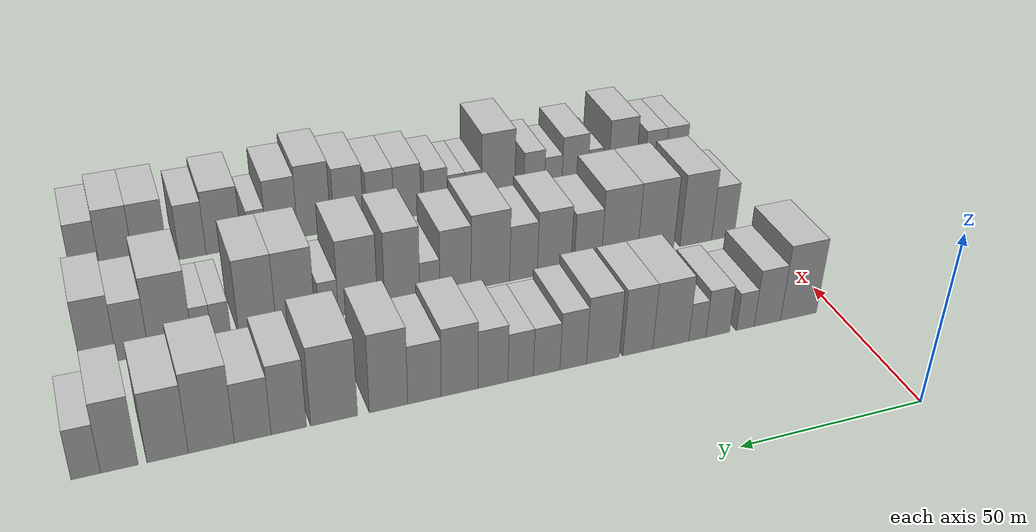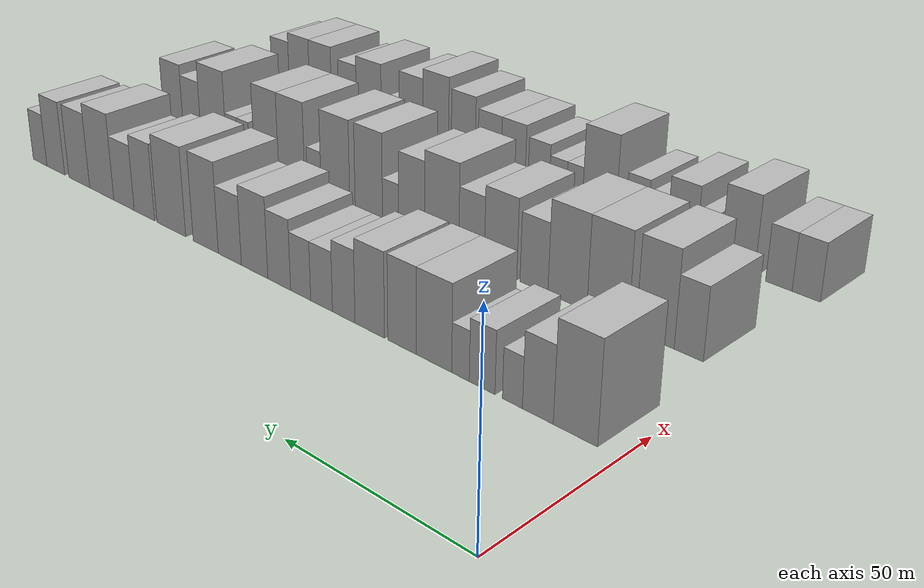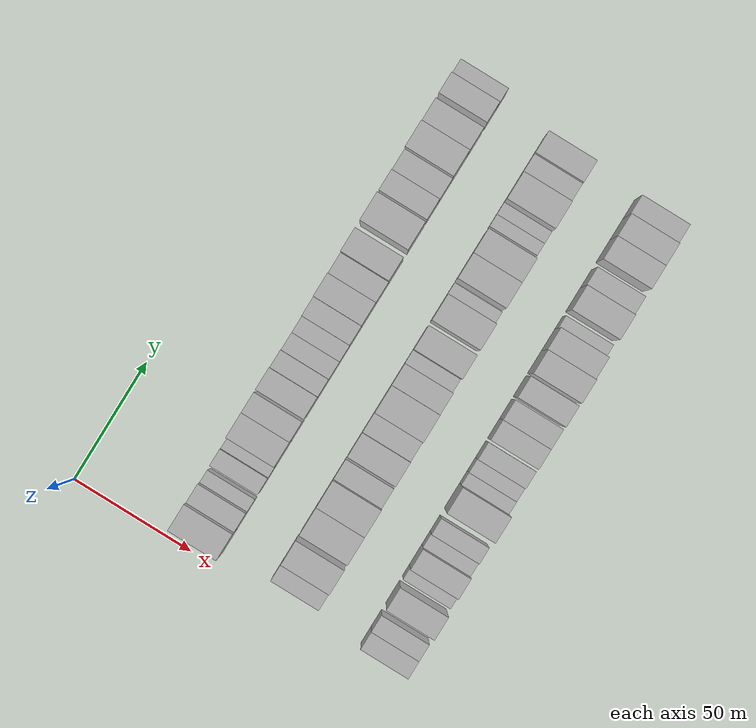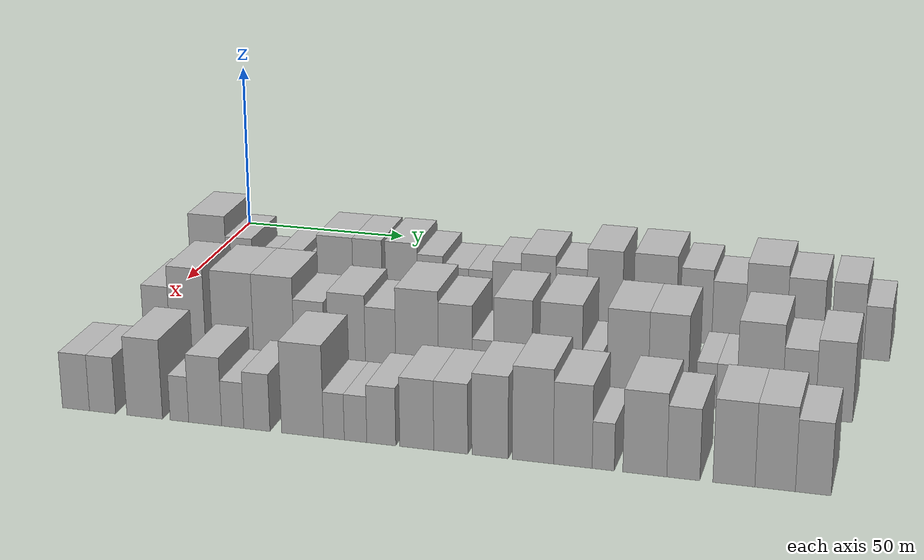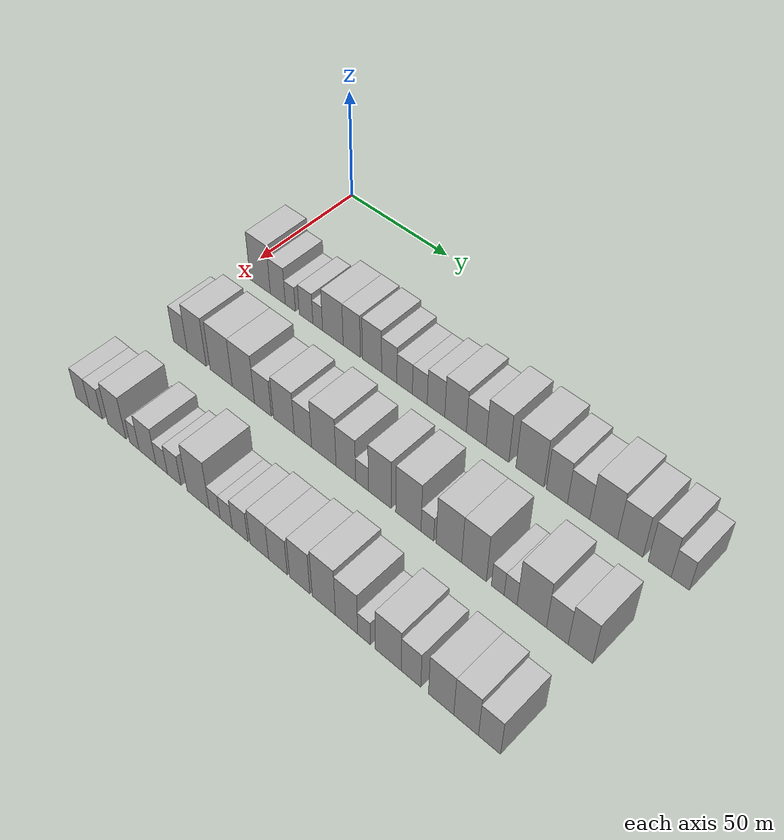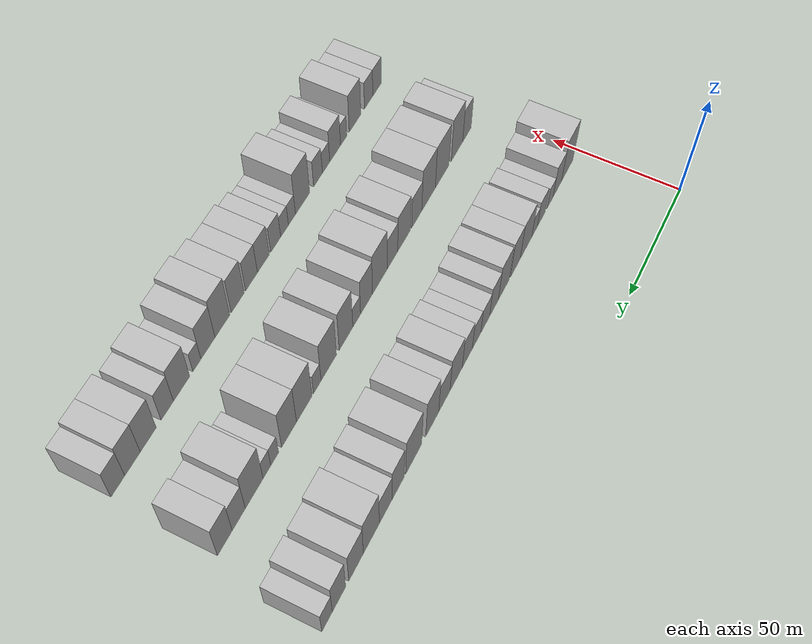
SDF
<sdf version="1.6">
 <world name="default">
  <model name="building_43">
   <static>1</static>
   <pose>50.0000 10.8347 0 0.000000 0.000000 0.000000</pose>
   <link name="link">
    <pose>0 0 12.00 0 0 0</pose>
    <collision name="collision"><geometry><box><size>20.0000 10.9284 24.0000</size></box></geometry></collision>
    <visual name="visual">
     <cast_shadows>0</cast_shadows>
     <geometry><box><size>20.0000 10.9284 24.0000</size></box></geometry>
     <material>
      <script>
       <uri>model://HANNAS_wall/materials/scripts</uri>
       <uri>model://HANNAS_wall/materials/textures</uri>
       <name>vrc/HANNAS_wall</name>
      </script>
     </material>
    </visual>
   </link>
  </model>
  <model name="building_44">
   <static>1</static>
   <pose>50.0000 20.2627 0 0.000000 0.000000 0.000000</pose>
   <link name="link">
    <pose>0 0 9.00 0 0 0</pose>
    <collision name="collision"><geometry><box><size>20.0000 7.9275 18.0000</size></box></geometry></collision>
    <visual name="visual">
     <cast_shadows>0</cast_shadows>
     <geometry><box><size>20.0000 7.9275 18.0000</size></box></geometry>
     <material>
      <script>
       <uri>model://HANNAS_wall/materials/scripts</uri>
       <uri>model://HANNAS_wall/materials/textures</uri>
       <name>vrc/HANNAS_wall</name>
      </script>
     </material>
    </visual>
   </link>
  </model>
  <model name="building_45">
   <static>1</static>
   <pose>50.0000 26.8715 0 0.000000 0.000000 0.000000</pose>
   <link name="link">
    <pose>0 0 6.00 0 0 0</pose>
    <collision name="collision"><geometry><box><size>20.0000 5.2903 12.0000</size></box></geometry></collision>
    <visual name="visual">
     <cast_shadows>0</cast_shadows>
     <geometry><box><size>20.0000 5.2903 12.0000</size></box></geometry>
     <material>
      <script>
       <uri>model://HANNAS_wall/materials/scripts</uri>
       <uri>model://HANNAS_wall/materials/textures</uri>
       <name>vrc/HANNAS_wall</name>
      </script>
     </material>
    </visual>
   </link>
  </model>
  <model name="building_46">
   <static>1</static>
   <pose>50.0000 35.0334 0 0.000000 0.000000 0.000000</pose>
   <link name="link">
    <pose>0 0 7.50 0 0 0</pose>
    <collision name="collision"><geometry><box><size>20.0000 7.0335 15.0000</size></box></geometry></collision>
    <visual name="visual">
     <cast_shadows>0</cast_shadows>
     <geometry><box><size>20.0000 7.0335 15.0000</size></box></geometry>
     <material>
      <script>
       <uri>model://HANNAS_wall/materials/scripts</uri>
       <uri>model://HANNAS_wall/materials/textures</uri>
       <name>vrc/HANNAS_wall</name>
      </script>
     </material>
    </visual>
   </link>
  </model>
  <model name="building_47">
   <static>1</static>
   <pose>50.0000 41.0266 0 0.000000 0.000000 0.000000</pose>
   <link name="link">
    <pose>0 0 6.00 0 0 0</pose>
    <collision name="collision"><geometry><box><size>20.0000 4.9528 12.0000</size></box></geometry></collision>
    <visual name="visual">
     <cast_shadows>0</cast_shadows>
     <geometry><box><size>20.0000 4.9528 12.0000</size></box></geometry>
     <material>
      <script>
       <uri>model://HANNAS_wall/materials/scripts</uri>
       <uri>model://HANNAS_wall/materials/textures</uri>
       <name>vrc/HANNAS_wall</name>
      </script>
     </material>
    </visual>
   </link>
  </model>
  <model name="building_48">
   <static>1</static>
   <pose>50.0000 48.6818 0 0.000000 0.000000 0.000000</pose>
   <link name="link">
    <pose>0 0 10.50 0 0 0</pose>
    <collision name="collision"><geometry><box><size>20.0000 10.3576 21.0000</size></box></geometry></collision>
    <visual name="visual">
     <cast_shadows>0</cast_shadows>
     <geometry><box><size>20.0000 10.3576 21.0000</size></box></geometry>
     <material>
      <script>
       <uri>model://HANNAS_wall/materials/scripts</uri>
       <uri>model://HANNAS_wall/materials/textures</uri>
       <name>vrc/HANNAS_wall</name>
      </script>
     </material>
    </visual>
   </link>
  </model>
  <model name="building_49">
   <static>1</static>
   <pose>50.0000 58.1059 0 0.000000 0.000000 0.000000</pose>
   <link name="link">
    <pose>0 0 10.50 0 0 0</pose>
    <collision name="collision"><geometry><box><size>20.0000 8.4907 21.0000</size></box></geometry></collision>
    <visual name="visual">
     <cast_shadows>0</cast_shadows>
     <geometry><box><size>20.0000 8.4907 21.0000</size></box></geometry>
     <material>
      <script>
       <uri>model://HANNAS_wall/materials/scripts</uri>
       <uri>model://HANNAS_wall/materials/textures</uri>
       <name>vrc/HANNAS_wall</name>
      </script>
     </material>
    </visual>
   </link>
  </model>
  <model name="building_50">
   <static>1</static>
   <pose>50.0000 67.9712 0 0.000000 0.000000 0.000000</pose>
   <link name="link">
    <pose>0 0 10.50 0 0 0</pose>
    <collision name="collision"><geometry><box><size>20.0000 9.2398 21.0000</size></box></geometry></collision>
    <visual name="visual">
     <cast_shadows>0</cast_shadows>
     <geometry><box><size>20.0000 9.2398 21.0000</size></box></geometry>
     <material>
      <script>
       <uri>model://HANNAS_wall/materials/scripts</uri>
       <uri>model://HANNAS_wall/materials/textures</uri>
       <name>vrc/HANNAS_wall</name>
      </script>
     </material>
    </visual>
   </link>
  </model>
  <model name="building_51">
   <static>1</static>
   <pose>50.0000 76.2383 0 0.000000 0.000000 0.000000</pose>
   <link name="link">
    <pose>0 0 9.00 0 0 0</pose>
    <collision name="collision"><geometry><box><size>20.0000 7.2944 18.0000</size></box></geometry></collision>
    <visual name="visual">
     <cast_shadows>0</cast_shadows>
     <geometry><box><size>20.0000 7.2944 18.0000</size></box></geometry>
     <material>
      <script>
       <uri>model://HANNAS_wall/materials/scripts</uri>
       <uri>model://HANNAS_wall/materials/textures</uri>
       <name>vrc/HANNAS_wall</name>
      </script>
     </material>
    </visual>
   </link>
  </model>
  <model name="building_52">
   <static>1</static>
   <pose>50.0000 83.5238 0 0.000000 0.000000 0.000000</pose>
   <link name="link">
    <pose>0 0 7.50 0 0 0</pose>
    <collision name="collision"><geometry><box><size>20.0000 7.2766 15.0000</size></box></geometry></collision>
    <visual name="visual">
     <cast_shadows>0</cast_shadows>
     <geometry><box><size>20.0000 7.2766 15.0000</size></box></geometry>
     <material>
      <script>
       <uri>model://HANNAS_wall/materials/scripts</uri>
       <uri>model://HANNAS_wall/materials/textures</uri>
       <name>vrc/HANNAS_wall</name>
      </script>
     </material>
    </visual>
   </link>
  </model>
  <model name="building_53">
   <static>1</static>
   <pose>50.0000 90.5950 0 0.000000 0.000000 0.000000</pose>
   <link name="link">
    <pose>0 0 7.50 0 0 0</pose>
    <collision name="collision"><geometry><box><size>20.0000 6.8658 15.0000</size></box></geometry></collision>
    <visual name="visual">
     <cast_shadows>0</cast_shadows>
     <geometry><box><size>20.0000 6.8658 15.0000</size></box></geometry>
     <material>
      <script>
       <uri>model://HANNAS_wall/materials/scripts</uri>
       <uri>model://HANNAS_wall/materials/textures</uri>
       <name>vrc/HANNAS_wall</name>
      </script>
     </material>
    </visual>
   </link>
  </model>
  <model name="building_54">
   <static>1</static>
   <pose>50.0000 98.0356 0 0.000000 0.000000 0.000000</pose>
   <link name="link">
    <pose>0 0 9.00 0 0 0</pose>
    <collision name="collision"><geometry><box><size>20.0000 8.0153 18.0000</size></box></geometry></collision>
    <visual name="visual">
     <cast_shadows>0</cast_shadows>
     <geometry><box><size>20.0000 8.0153 18.0000</size></box></geometry>
     <material>
      <script>
       <uri>model://HANNAS_wall/materials/scripts</uri>
       <uri>model://HANNAS_wall/materials/textures</uri>
       <name>vrc/HANNAS_wall</name>
      </script>
     </material>
    </visual>
   </link>
  </model>
  <model name="building_55">
   <static>1</static>
   <pose>50.0000 106.8641 0 0.000000 0.000000 0.000000</pose>
   <link name="link">
    <pose>0 0 10.50 0 0 0</pose>
    <collision name="collision"><geometry><box><size>20.0000 9.6418 21.0000</size></box></geometry></collision>
    <visual name="visual">
     <cast_shadows>0</cast_shadows>
     <geometry><box><size>20.0000 9.6418 21.0000</size></box></geometry>
     <material>
      <script>
       <uri>model://HANNAS_wall/materials/scripts</uri>
       <uri>model://HANNAS_wall/materials/textures</uri>
       <name>vrc/HANNAS_wall</name>
      </script>
     </material>
    </visual>
   </link>
  </model>
  <model name="building_56">
   <static>1</static>
   <pose>50.0000 116.0233 0 0.000000 0.000000 0.000000</pose>
   <link name="link">
    <pose>0 0 9.00 0 0 0</pose>
    <collision name="collision"><geometry><box><size>20.0000 8.6765 18.0000</size></box></geometry></collision>
    <visual name="visual">
     <cast_shadows>0</cast_shadows>
     <geometry><box><size>20.0000 8.6765 18.0000</size></box></geometry>
     <material>
      <script>
       <uri>model://HANNAS_wall/materials/scripts</uri>
       <uri>model://HANNAS_wall/materials/textures</uri>
       <name>vrc/HANNAS_wall</name>
      </script>
     </material>
    </visual>
   </link>
  </model>
  <model name="building_57">
   <static>1</static>
   <pose>50.0000 125.2580 0 0.000000 0.000000 0.000000</pose>
   <link name="link">
    <pose>0 0 12.00 0 0 0</pose>
    <collision name="collision"><geometry><box><size>20.0000 9.7930 24.0000</size></box></geometry></collision>
    <visual name="visual">
     <cast_shadows>0</cast_shadows>
     <geometry><box><size>20.0000 9.7930 24.0000</size></box></geometry>
     <material>
      <script>
       <uri>model://HANNAS_wall/materials/scripts</uri>
       <uri>model://HANNAS_wall/materials/textures</uri>
       <name>vrc/HANNAS_wall</name>
      </script>
     </material>
    </visual>
   </link>
  </model>
  <model name="building_58">
   <static>1</static>
   <pose>50.0000 139.0167 0 0.000000 0.000000 0.000000</pose>
   <link name="link">
    <pose>0 0 12.00 0 0 0</pose>
    <collision name="collision"><geometry><box><size>20.0000 11.7243 24.0000</size></box></geometry></collision>
    <visual name="visual">
     <cast_shadows>0</cast_shadows>
     <geometry><box><size>20.0000 11.7243 24.0000</size></box></geometry>
     <material>
      <script>
       <uri>model://HANNAS_wall/materials/scripts</uri>
       <uri>model://HANNAS_wall/materials/textures</uri>
       <name>vrc/HANNAS_wall</name>
      </script>
     </material>
    </visual>
   </link>
  </model>
  <model name="building_59">
   <static>1</static>
   <pose>50.0000 150.1968 0 0.000000 0.000000 0.000000</pose>
   <link name="link">
    <pose>0 0 10.50 0 0 0</pose>
    <collision name="collision"><geometry><box><size>20.0000 8.6360 21.0000</size></box></geometry></collision>
    <visual name="visual">
     <cast_shadows>0</cast_shadows>
     <geometry><box><size>20.0000 8.6360 21.0000</size></box></geometry>
     <material>
      <script>
       <uri>model://HANNAS_wall/materials/scripts</uri>
       <uri>model://HANNAS_wall/materials/textures</uri>
       <name>vrc/HANNAS_wall</name>
      </script>
     </material>
    </visual>
   </link>
  </model>
  <model name="building_60">
   <static>1</static>
   <pose>50.0000 158.9674 0 0.000000 0.000000 0.000000</pose>
   <link name="link">
    <pose>0 0 9.00 0 0 0</pose>
    <collision name="collision"><geometry><box><size>20.0000 8.9051 18.0000</size></box></geometry></collision>
    <visual name="visual">
     <cast_shadows>0</cast_shadows>
     <geometry><box><size>20.0000 8.9051 18.0000</size></box></geometry>
     <material>
      <script>
       <uri>model://HANNAS_wall/materials/scripts</uri>
       <uri>model://HANNAS_wall/materials/textures</uri>
       <name>vrc/HANNAS_wall</name>
      </script>
     </material>
    </visual>
   </link>
  </model>
  <model name="building_61">
   <static>1</static>
   <pose>50.0000 168.8890 0 0.000000 0.000000 0.000000</pose>
   <link name="link">
    <pose>0 0 12.00 0 0 0</pose>
    <collision name="collision"><geometry><box><size>20.0000 10.9381 24.0000</size></box></geometry></collision>
    <visual name="visual">
     <cast_shadows>0</cast_shadows>
     <geometry><box><size>20.0000 10.9381 24.0000</size></box></geometry>
     <material>
      <script>
       <uri>model://HANNAS_wall/materials/scripts</uri>
       <uri>model://HANNAS_wall/materials/textures</uri>
       <name>vrc/HANNAS_wall</name>
      </script>
     </material>
    </visual>
   </link>
  </model>
  <model name="building_62">
   <static>1</static>
   <pose>50.0000 179.2238 0 0.000000 0.000000 0.000000</pose>
   <link name="link">
    <pose>0 0 10.50 0 0 0</pose>
    <collision name="collision"><geometry><box><size>20.0000 9.7315 21.0000</size></box></geometry></collision>
    <visual name="visual">
     <cast_shadows>0</cast_shadows>
     <geometry><box><size>20.0000 9.7315 21.0000</size></box></geometry>
     <material>
      <script>
       <uri>model://HANNAS_wall/materials/scripts</uri>
       <uri>model://HANNAS_wall/materials/textures</uri>
       <name>vrc/HANNAS_wall</name>
      </script>
     </material>
    </visual>
   </link>
  </model>
  <model name="building_63">
   <static>1</static>
   <pose>50.0000 190.4064 0 0.000000 0.000000 0.000000</pose>
   <link name="link">
    <pose>0 0 10.50 0 0 0</pose>
    <collision name="collision"><geometry><box><size>20.0000 8.6338 21.0000</size></box></geometry></collision>
    <visual name="visual">
     <cast_shadows>0</cast_shadows>
     <geometry><box><size>20.0000 8.6338 21.0000</size></box></geometry>
     <material>
      <script>
       <uri>model://HANNAS_wall/materials/scripts</uri>
       <uri>model://HANNAS_wall/materials/textures</uri>
       <name>vrc/HANNAS_wall</name>
      </script>
     </material>
    </visual>
   </link>
  </model>
  <model name="building_64">
   <static>1</static>
   <pose>50.0000 198.0834 0 0.000000 0.000000 0.000000</pose>
   <link name="link">
    <pose>0 0 7.50 0 0 0</pose>
    <collision name="collision"><geometry><box><size>20.0000 6.7202 15.0000</size></box></geometry></collision>
    <visual name="visual">
     <cast_shadows>0</cast_shadows>
     <geometry><box><size>20.0000 6.7202 15.0000</size></box></geometry>
     <material>
      <script>
       <uri>model://HANNAS_wall/materials/scripts</uri>
       <uri>model://HANNAS_wall/materials/textures</uri>
       <name>vrc/HANNAS_wall</name>
      </script>
     </material>
    </visual>
   </link>
  </model>
  <model name="building_131">
   <static>1</static>
   <pose>90.0000 12.2216 0 0.000000 0.000000 0.000000</pose>
   <link name="link">
    <pose>0 0 9.00 0 0 0</pose>
    <collision name="collision"><geometry><box><size>20.0000 7.4185 18.0000</size></box></geometry></collision>
    <visual name="visual">
     <cast_shadows>0</cast_shadows>
     <geometry><box><size>20.0000 7.4185 18.0000</size></box></geometry>
     <material>
      <script>
       <uri>model://HANNAS_wall/materials/scripts</uri>
       <uri>model://HANNAS_wall/materials/textures</uri>
       <name>vrc/HANNAS_wall</name>
      </script>
     </material>
    </visual>
   </link>
  </model>
  <model name="building_132">
   <static>1</static>
   <pose>90.0000 20.9869 0 0.000000 0.000000 0.000000</pose>
   <link name="link">
    <pose>0 0 12.00 0 0 0</pose>
    <collision name="collision"><geometry><box><size>20.0000 10.1121 24.0000</size></box></geometry></collision>
    <visual name="visual">
     <cast_shadows>0</cast_shadows>
     <geometry><box><size>20.0000 10.1121 24.0000</size></box></geometry>
     <material>
      <script>
       <uri>model://HANNAS_wall/materials/scripts</uri>
       <uri>model://HANNAS_wall/materials/textures</uri>
       <name>vrc/HANNAS_wall</name>
      </script>
     </material>
    </visual>
   </link>
  </model>
  <model name="building_133">
   <static>1</static>
   <pose>90.0000 33.7827 0 0.000000 0.000000 0.000000</pose>
   <link name="link">
    <pose>0 0 12.00 0 0 0</pose>
    <collision name="collision"><geometry><box><size>20.0000 11.4796 24.0000</size></box></geometry></collision>
    <visual name="visual">
     <cast_shadows>0</cast_shadows>
     <geometry><box><size>20.0000 11.4796 24.0000</size></box></geometry>
     <material>
      <script>
       <uri>model://HANNAS_wall/materials/scripts</uri>
       <uri>model://HANNAS_wall/materials/textures</uri>
       <name>vrc/HANNAS_wall</name>
      </script>
     </material>
    </visual>
   </link>
  </model>
  <model name="building_134">
   <static>1</static>
   <pose>90.0000 45.1592 0 0.000000 0.000000 0.000000</pose>
   <link name="link">
    <pose>0 0 12.00 0 0 0</pose>
    <collision name="collision"><geometry><box><size>20.0000 11.2734 24.0000</size></box></geometry></collision>
    <visual name="visual">
     <cast_shadows>0</cast_shadows>
     <geometry><box><size>20.0000 11.2734 24.0000</size></box></geometry>
     <material>
      <script>
       <uri>model://HANNAS_wall/materials/scripts</uri>
       <uri>model://HANNAS_wall/materials/textures</uri>
       <name>vrc/HANNAS_wall</name>
      </script>
     </material>
    </visual>
   </link>
  </model>
  <model name="building_135">
   <static>1</static>
   <pose>90.0000 54.9734 0 0.000000 0.000000 0.000000</pose>
   <link name="link">
    <pose>0 0 9.00 0 0 0</pose>
    <collision name="collision"><geometry><box><size>20.0000 8.3552 18.0000</size></box></geometry></collision>
    <visual name="visual">
     <cast_shadows>0</cast_shadows>
     <geometry><box><size>20.0000 8.3552 18.0000</size></box></geometry>
     <material>
      <script>
       <uri>model://HANNAS_wall/materials/scripts</uri>
       <uri>model://HANNAS_wall/materials/textures</uri>
       <name>vrc/HANNAS_wall</name>
      </script>
     </material>
    </visual>
   </link>
  </model>
  <model name="building_136">
   <static>1</static>
   <pose>90.0000 65.2297 0 0.000000 0.000000 0.000000</pose>
   <link name="link">
    <pose>0 0 10.50 0 0 0</pose>
    <collision name="collision"><geometry><box><size>20.0000 10.1574 21.0000</size></box></geometry></collision>
    <visual name="visual">
     <cast_shadows>0</cast_shadows>
     <geometry><box><size>20.0000 10.1574 21.0000</size></box></geometry>
     <material>
      <script>
       <uri>model://HANNAS_wall/materials/scripts</uri>
       <uri>model://HANNAS_wall/materials/textures</uri>
       <name>vrc/HANNAS_wall</name>
      </script>
     </material>
    </visual>
   </link>
  </model>
  <model name="building_137">
   <static>1</static>
   <pose>90.0000 74.4250 0 0.000000 0.000000 0.000000</pose>
   <link name="link">
    <pose>0 0 9.00 0 0 0</pose>
    <collision name="collision"><geometry><box><size>20.0000 8.2332 18.0000</size></box></geometry></collision>
    <visual name="visual">
     <cast_shadows>0</cast_shadows>
     <geometry><box><size>20.0000 8.2332 18.0000</size></box></geometry>
     <material>
      <script>
       <uri>model://HANNAS_wall/materials/scripts</uri>
       <uri>model://HANNAS_wall/materials/textures</uri>
       <name>vrc/HANNAS_wall</name>
      </script>
     </material>
    </visual>
   </link>
  </model>
  <model name="building_138">
   <static>1</static>
   <pose>90.0000 84.2422 0 0.000000 0.000000 0.000000</pose>
   <link name="link">
    <pose>0 0 12.00 0 0 0</pose>
    <collision name="collision"><geometry><box><size>20.0000 11.4012 24.0000</size></box></geometry></collision>
    <visual name="visual">
     <cast_shadows>0</cast_shadows>
     <geometry><box><size>20.0000 11.4012 24.0000</size></box></geometry>
     <material>
      <script>
       <uri>model://HANNAS_wall/materials/scripts</uri>
       <uri>model://HANNAS_wall/materials/textures</uri>
       <name>vrc/HANNAS_wall</name>
      </script>
     </material>
    </visual>
   </link>
  </model>
  <model name="building_139">
   <static>1</static>
   <pose>90.0000 94.4384 0 0.000000 0.000000 0.000000</pose>
   <link name="link">
    <pose>0 0 10.50 0 0 0</pose>
    <collision name="collision"><geometry><box><size>20.0000 8.9912 21.0000</size></box></geometry></collision>
    <visual name="visual">
     <cast_shadows>0</cast_shadows>
     <geometry><box><size>20.0000 8.9912 21.0000</size></box></geometry>
     <material>
      <script>
       <uri>model://HANNAS_wall/materials/scripts</uri>
       <uri>model://HANNAS_wall/materials/textures</uri>
       <name>vrc/HANNAS_wall</name>
      </script>
     </material>
    </visual>
   </link>
  </model>
  <model name="building_140">
   <static>1</static>
   <pose>90.0000 101.7940 0 0.000000 0.000000 0.000000</pose>
   <link name="link">
    <pose>0 0 6.00 0 0 0</pose>
    <collision name="collision"><geometry><box><size>20.0000 5.7200 12.0000</size></box></geometry></collision>
    <visual name="visual">
     <cast_shadows>0</cast_shadows>
     <geometry><box><size>20.0000 5.7200 12.0000</size></box></geometry>
     <material>
      <script>
       <uri>model://HANNAS_wall/materials/scripts</uri>
       <uri>model://HANNAS_wall/materials/textures</uri>
       <name>vrc/HANNAS_wall</name>
      </script>
     </material>
    </visual>
   </link>
  </model>
  <model name="building_141">
   <static>1</static>
   <pose>90.0000 109.6433 0 0.000000 0.000000 0.000000</pose>
   <link name="link">
    <pose>0 0 12.00 0 0 0</pose>
    <collision name="collision"><geometry><box><size>20.0000 9.9786 24.0000</size></box></geometry></collision>
    <visual name="visual">
     <cast_shadows>0</cast_shadows>
     <geometry><box><size>20.0000 9.9786 24.0000</size></box></geometry>
     <material>
      <script>
       <uri>model://HANNAS_wall/materials/scripts</uri>
       <uri>model://HANNAS_wall/materials/textures</uri>
       <name>vrc/HANNAS_wall</name>
      </script>
     </material>
    </visual>
   </link>
  </model>
  <model name="building_142">
   <static>1</static>
   <pose>90.0000 122.0825 0 0.000000 0.000000 0.000000</pose>
   <link name="link">
    <pose>0 0 12.00 0 0 0</pose>
    <collision name="collision"><geometry><box><size>20.0000 10.8999 24.0000</size></box></geometry></collision>
    <visual name="visual">
     <cast_shadows>0</cast_shadows>
     <geometry><box><size>20.0000 10.8999 24.0000</size></box></geometry>
     <material>
      <script>
       <uri>model://HANNAS_wall/materials/scripts</uri>
       <uri>model://HANNAS_wall/materials/textures</uri>
       <name>vrc/HANNAS_wall</name>
      </script>
     </material>
    </visual>
   </link>
  </model>
  <model name="building_143">
   <static>1</static>
   <pose>90.0000 130.2156 0 0.000000 0.000000 0.000000</pose>
   <link name="link">
    <pose>0 0 6.00 0 0 0</pose>
    <collision name="collision"><geometry><box><size>20.0000 5.3662 12.0000</size></box></geometry></collision>
    <visual name="visual">
     <cast_shadows>0</cast_shadows>
     <geometry><box><size>20.0000 5.3662 12.0000</size></box></geometry>
     <material>
      <script>
       <uri>model://HANNAS_wall/materials/scripts</uri>
       <uri>model://HANNAS_wall/materials/textures</uri>
       <name>vrc/HANNAS_wall</name>
      </script>
     </material>
    </visual>
   </link>
  </model>
  <model name="building_144">
   <static>1</static>
   <pose>90.0000 139.1857 0 0.000000 0.000000 0.000000</pose>
   <link name="link">
    <pose>0 0 12.00 0 0 0</pose>
    <collision name="collision"><geometry><box><size>20.0000 10.5739 24.0000</size></box></geometry></collision>
    <visual name="visual">
     <cast_shadows>0</cast_shadows>
     <geometry><box><size>20.0000 10.5739 24.0000</size></box></geometry>
     <material>
      <script>
       <uri>model://HANNAS_wall/materials/scripts</uri>
       <uri>model://HANNAS_wall/materials/textures</uri>
       <name>vrc/HANNAS_wall</name>
      </script>
     </material>
    </visual>
   </link>
  </model>
  <model name="building_145">
   <static>1</static>
   <pose>90.0000 149.4867 0 0.000000 0.000000 0.000000</pose>
   <link name="link">
    <pose>0 0 12.00 0 0 0</pose>
    <collision name="collision"><geometry><box><size>20.0000 10.0281 24.0000</size></box></geometry></collision>
    <visual name="visual">
     <cast_shadows>0</cast_shadows>
     <geometry><box><size>20.0000 10.0281 24.0000</size></box></geometry>
     <material>
      <script>
       <uri>model://HANNAS_wall/materials/scripts</uri>
       <uri>model://HANNAS_wall/materials/textures</uri>
       <name>vrc/HANNAS_wall</name>
      </script>
     </material>
    </visual>
   </link>
  </model>
  <model name="building_146">
   <static>1</static>
   <pose>90.0000 159.0465 0 0.000000 0.000000 0.000000</pose>
   <link name="link">
    <pose>0 0 6.00 0 0 0</pose>
    <collision name="collision"><geometry><box><size>20.0000 5.0916 12.0000</size></box></geometry></collision>
    <visual name="visual">
     <cast_shadows>0</cast_shadows>
     <geometry><box><size>20.0000 5.0916 12.0000</size></box></geometry>
     <material>
      <script>
       <uri>model://HANNAS_wall/materials/scripts</uri>
       <uri>model://HANNAS_wall/materials/textures</uri>
       <name>vrc/HANNAS_wall</name>
      </script>
     </material>
    </visual>
   </link>
  </model>
  <model name="building_147">
   <static>1</static>
   <pose>90.0000 164.1067 0 0.000000 0.000000 0.000000</pose>
   <link name="link">
    <pose>0 0 6.00 0 0 0</pose>
    <collision name="collision"><geometry><box><size>20.0000 5.0288 12.0000</size></box></geometry></collision>
    <visual name="visual">
     <cast_shadows>0</cast_shadows>
     <geometry><box><size>20.0000 5.0288 12.0000</size></box></geometry>
     <material>
      <script>
       <uri>model://HANNAS_wall/materials/scripts</uri>
       <uri>model://HANNAS_wall/materials/textures</uri>
       <name>vrc/HANNAS_wall</name>
      </script>
     </material>
    </visual>
   </link>
  </model>
  <model name="building_148">
   <static>1</static>
   <pose>90.0000 172.2764 0 0.000000 0.000000 0.000000</pose>
   <link name="link">
    <pose>0 0 12.00 0 0 0</pose>
    <collision name="collision"><geometry><box><size>20.0000 11.3107 24.0000</size></box></geometry></collision>
    <visual name="visual">
     <cast_shadows>0</cast_shadows>
     <geometry><box><size>20.0000 11.3107 24.0000</size></box></geometry>
     <material>
      <script>
       <uri>model://HANNAS_wall/materials/scripts</uri>
       <uri>model://HANNAS_wall/materials/textures</uri>
       <name>vrc/HANNAS_wall</name>
      </script>
     </material>
    </visual>
   </link>
  </model>
  <model name="building_149">
   <static>1</static>
   <pose>90.0000 182.0130 0 0.000000 0.000000 0.000000</pose>
   <link name="link">
    <pose>0 0 9.00 0 0 0</pose>
    <collision name="collision"><geometry><box><size>20.0000 8.1625 18.0000</size></box></geometry></collision>
    <visual name="visual">
     <cast_shadows>0</cast_shadows>
     <geometry><box><size>20.0000 8.1625 18.0000</size></box></geometry>
     <material>
      <script>
       <uri>model://HANNAS_wall/materials/scripts</uri>
       <uri>model://HANNAS_wall/materials/textures</uri>
       <name>vrc/HANNAS_wall</name>
      </script>
     </material>
    </visual>
   </link>
  </model>
  <model name="building_150">
   <static>1</static>
   <pose>90.0000 190.6314 0 0.000000 0.000000 0.000000</pose>
   <link name="link">
    <pose>0 0 10.50 0 0 0</pose>
    <collision name="collision"><geometry><box><size>20.0000 9.0744 21.0000</size></box></geometry></collision>
    <visual name="visual">
     <cast_shadows>0</cast_shadows>
     <geometry><box><size>20.0000 9.0744 21.0000</size></box></geometry>
     <material>
      <script>
       <uri>model://HANNAS_wall/materials/scripts</uri>
       <uri>model://HANNAS_wall/materials/textures</uri>
       <name>vrc/HANNAS_wall</name>
      </script>
     </material>
    </visual>
   </link>
  </model>
  <model name="building_211">
   <static>1</static>
   <pose>130.0000 7.8203 0 0.000000 0.000000 0.000000</pose>
   <link name="link">
    <pose>0 0 7.50 0 0 0</pose>
    <collision name="collision"><geometry><box><size>20.0000 7.2845 15.0000</size></box></geometry></collision>
    <visual name="visual">
     <cast_shadows>0</cast_shadows>
     <geometry><box><size>20.0000 7.2845 15.0000</size></box></geometry>
     <material>
      <script>
       <uri>model://HANNAS_wall/materials/scripts</uri>
       <uri>model://HANNAS_wall/materials/textures</uri>
       <name>vrc/HANNAS_wall</name>
      </script>
     </material>
    </visual>
   </link>
  </model>
  <model name="building_212">
   <static>1</static>
   <pose>130.0000 14.9676 0 0.000000 0.000000 0.000000</pose>
   <link name="link">
    <pose>0 0 7.50 0 0 0</pose>
    <collision name="collision"><geometry><box><size>20.0000 7.0101 15.0000</size></box></geometry></collision>
    <visual name="visual">
     <cast_shadows>0</cast_shadows>
     <geometry><box><size>20.0000 7.0101 15.0000</size></box></geometry>
     <material>
      <script>
       <uri>model://HANNAS_wall/materials/scripts</uri>
       <uri>model://HANNAS_wall/materials/textures</uri>
       <name>vrc/HANNAS_wall</name>
      </script>
     </material>
    </visual>
   </link>
  </model>
  <model name="building_213">
   <static>1</static>
   <pose>130.0000 26.2120 0 0.000000 0.000000 0.000000</pose>
   <link name="link">
    <pose>0 0 10.50 0 0 0</pose>
    <collision name="collision"><geometry><box><size>20.0000 9.4786 21.0000</size></box></geometry></collision>
    <visual name="visual">
     <cast_shadows>0</cast_shadows>
     <geometry><box><size>20.0000 9.4786 21.0000</size></box></geometry>
     <material>
      <script>
       <uri>model://HANNAS_wall/materials/scripts</uri>
       <uri>model://HANNAS_wall/materials/textures</uri>
       <name>vrc/HANNAS_wall</name>
      </script>
     </material>
    </visual>
   </link>
  </model>
  <model name="building_214">
   <static>1</static>
   <pose>130.0000 35.3911 0 0.000000 0.000000 0.000000</pose>
   <link name="link">
    <pose>0 0 6.00 0 0 0</pose>
    <collision name="collision"><geometry><box><size>20.0000 4.8796 12.0000</size></box></geometry></collision>
    <visual name="visual">
     <cast_shadows>0</cast_shadows>
     <geometry><box><size>20.0000 4.8796 12.0000</size></box></geometry>
     <material>
      <script>
       <uri>model://HANNAS_wall/materials/scripts</uri>
       <uri>model://HANNAS_wall/materials/textures</uri>
       <name>vrc/HANNAS_wall</name>
      </script>
     </material>
    </visual>
   </link>
  </model>
  <model name="building_215">
   <static>1</static>
   <pose>130.0000 42.1342 0 0.000000 0.000000 0.000000</pose>
   <link name="link">
    <pose>0 0 9.00 0 0 0</pose>
    <collision name="collision"><geometry><box><size>20.0000 8.6066 18.0000</size></box></geometry></collision>
    <visual name="visual">
     <cast_shadows>0</cast_shadows>
     <geometry><box><size>20.0000 8.6066 18.0000</size></box></geometry>
     <material>
      <script>
       <uri>model://HANNAS_wall/materials/scripts</uri>
       <uri>model://HANNAS_wall/materials/textures</uri>
       <name>vrc/HANNAS_wall</name>
      </script>
     </material>
    </visual>
   </link>
  </model>
  <model name="building_216">
   <static>1</static>
   <pose>130.0000 49.3096 0 0.000000 0.000000 0.000000</pose>
   <link name="link">
    <pose>0 0 6.00 0 0 0</pose>
    <collision name="collision"><geometry><box><size>20.0000 5.7442 12.0000</size></box></geometry></collision>
    <visual name="visual">
     <cast_shadows>0</cast_shadows>
     <geometry><box><size>20.0000 5.7442 12.0000</size></box></geometry>
     <material>
      <script>
       <uri>model://HANNAS_wall/materials/scripts</uri>
       <uri>model://HANNAS_wall/materials/textures</uri>
       <name>vrc/HANNAS_wall</name>
      </script>
     </material>
    </visual>
   </link>
  </model>
  <model name="building_217">
   <static>1</static>
   <pose>130.0000 55.5555 0 0.000000 0.000000 0.000000</pose>
   <link name="link">
    <pose>0 0 7.50 0 0 0</pose>
    <collision name="collision"><geometry><box><size>20.0000 6.7476 15.0000</size></box></geometry></collision>
    <visual name="visual">
     <cast_shadows>0</cast_shadows>
     <geometry><box><size>20.0000 6.7476 15.0000</size></box></geometry>
     <material>
      <script>
       <uri>model://HANNAS_wall/materials/scripts</uri>
       <uri>model://HANNAS_wall/materials/textures</uri>
       <name>vrc/HANNAS_wall</name>
      </script>
     </material>
    </visual>
   </link>
  </model>
  <model name="building_218">
   <static>1</static>
   <pose>130.0000 67.2695 0 0.000000 0.000000 0.000000</pose>
   <link name="link">
    <pose>0 0 12.00 0 0 0</pose>
    <collision name="collision"><geometry><box><size>20.0000 10.6803 24.0000</size></box></geometry></collision>
    <visual name="visual">
     <cast_shadows>0</cast_shadows>
     <geometry><box><size>20.0000 10.6803 24.0000</size></box></geometry>
     <material>
      <script>
       <uri>model://HANNAS_wall/materials/scripts</uri>
       <uri>model://HANNAS_wall/materials/textures</uri>
       <name>vrc/HANNAS_wall</name>
      </script>
     </material>
    </visual>
   </link>
  </model>
  <model name="building_219">
   <static>1</static>
   <pose>130.0000 75.2383 0 0.000000 0.000000 0.000000</pose>
   <link name="link">
    <pose>0 0 6.00 0 0 0</pose>
    <collision name="collision"><geometry><box><size>20.0000 5.2573 12.0000</size></box></geometry></collision>
    <visual name="visual">
     <cast_shadows>0</cast_shadows>
     <geometry><box><size>20.0000 5.2573 12.0000</size></box></geometry>
     <material>
      <script>
       <uri>model://HANNAS_wall/materials/scripts</uri>
       <uri>model://HANNAS_wall/materials/textures</uri>
       <name>vrc/HANNAS_wall</name>
      </script>
     </material>
    </visual>
   </link>
  </model>
  <model name="building_220">
   <static>1</static>
   <pose>130.0000 80.7026 0 0.000000 0.000000 0.000000</pose>
   <link name="link">
    <pose>0 0 6.00 0 0 0</pose>
    <collision name="collision"><geometry><box><size>20.0000 5.6712 12.0000</size></box></geometry></collision>
    <visual name="visual">
     <cast_shadows>0</cast_shadows>
     <geometry><box><size>20.0000 5.6712 12.0000</size></box></geometry>
     <material>
      <script>
       <uri>model://HANNAS_wall/materials/scripts</uri>
       <uri>model://HANNAS_wall/materials/textures</uri>
       <name>vrc/HANNAS_wall</name>
      </script>
     </material>
    </visual>
   </link>
  </model>
  <model name="building_221">
   <static>1</static>
   <pose>130.0000 87.1530 0 0.000000 0.000000 0.000000</pose>
   <link name="link">
    <pose>0 0 7.50 0 0 0</pose>
    <collision name="collision"><geometry><box><size>20.0000 7.2296 15.0000</size></box></geometry></collision>
    <visual name="visual">
     <cast_shadows>0</cast_shadows>
     <geometry><box><size>20.0000 7.2296 15.0000</size></box></geometry>
     <material>
      <script>
       <uri>model://HANNAS_wall/materials/scripts</uri>
       <uri>model://HANNAS_wall/materials/textures</uri>
       <name>vrc/HANNAS_wall</name>
      </script>
     </material>
    </visual>
   </link>
  </model>
  <model name="building_222">
   <static>1</static>
   <pose>130.0000 95.9841 0 0.000000 0.000000 0.000000</pose>
   <link name="link">
    <pose>0 0 9.00 0 0 0</pose>
    <collision name="collision"><geometry><box><size>20.0000 8.4326 18.0000</size></box></geometry></collision>
    <visual name="visual">
     <cast_shadows>0</cast_shadows>
     <geometry><box><size>20.0000 8.4326 18.0000</size></box></geometry>
     <material>
      <script>
       <uri>model://HANNAS_wall/materials/scripts</uri>
       <uri>model://HANNAS_wall/materials/textures</uri>
       <name>vrc/HANNAS_wall</name>
      </script>
     </material>
    </visual>
   </link>
  </model>
  <model name="building_223">
   <static>1</static>
   <pose>130.0000 104.3781 0 0.000000 0.000000 0.000000</pose>
   <link name="link">
    <pose>0 0 9.00 0 0 0</pose>
    <collision name="collision"><geometry><box><size>20.0000 8.3553 18.0000</size></box></geometry></collision>
    <visual name="visual">
     <cast_shadows>0</cast_shadows>
     <geometry><box><size>20.0000 8.3553 18.0000</size></box></geometry>
     <material>
      <script>
       <uri>model://HANNAS_wall/materials/scripts</uri>
       <uri>model://HANNAS_wall/materials/textures</uri>
       <name>vrc/HANNAS_wall</name>
      </script>
     </material>
    </visual>
   </link>
  </model>
  <model name="building_224">
   <static>1</static>
   <pose>130.0000 113.9868 0 0.000000 0.000000 0.000000</pose>
   <link name="link">
    <pose>0 0 10.50 0 0 0</pose>
    <collision name="collision"><geometry><box><size>20.0000 8.8622 21.0000</size></box></geometry></collision>
    <visual name="visual">
     <cast_shadows>0</cast_shadows>
     <geometry><box><size>20.0000 8.8622 21.0000</size></box></geometry>
     <material>
      <script>
       <uri>model://HANNAS_wall/materials/scripts</uri>
       <uri>model://HANNAS_wall/materials/textures</uri>
       <name>vrc/HANNAS_wall</name>
      </script>
     </material>
    </visual>
   </link>
  </model>
  <model name="building_225">
   <static>1</static>
   <pose>130.0000 124.3555 0 0.000000 0.000000 0.000000</pose>
   <link name="link">
    <pose>0 0 12.00 0 0 0</pose>
    <collision name="collision"><geometry><box><size>20.0000 9.8751 24.0000</size></box></geometry></collision>
    <visual name="visual">
     <cast_shadows>0</cast_shadows>
     <geometry><box><size>20.0000 9.8751 24.0000</size></box></geometry>
     <material>
      <script>
       <uri>model://HANNAS_wall/materials/scripts</uri>
       <uri>model://HANNAS_wall/materials/textures</uri>
       <name>vrc/HANNAS_wall</name>
      </script>
     </material>
    </visual>
   </link>
  </model>
  <model name="building_226">
   <static>1</static>
   <pose>130.0000 133.9181 0 0.000000 0.000000 0.000000</pose>
   <link name="link">
    <pose>0 0 10.50 0 0 0</pose>
    <collision name="collision"><geometry><box><size>20.0000 9.2502 21.0000</size></box></geometry></collision>
    <visual name="visual">
     <cast_shadows>0</cast_shadows>
     <geometry><box><size>20.0000 9.2502 21.0000</size></box></geometry>
     <material>
      <script>
       <uri>model://HANNAS_wall/materials/scripts</uri>
       <uri>model://HANNAS_wall/materials/textures</uri>
       <name>vrc/HANNAS_wall</name>
      </script>
     </material>
    </visual>
   </link>
  </model>
  <model name="building_227">
   <static>1</static>
   <pose>130.0000 141.1658 0 0.000000 0.000000 0.000000</pose>
   <link name="link">
    <pose>0 0 6.00 0 0 0</pose>
    <collision name="collision"><geometry><box><size>20.0000 5.2452 12.0000</size></box></geometry></collision>
    <visual name="visual">
     <cast_shadows>0</cast_shadows>
     <geometry><box><size>20.0000 5.2452 12.0000</size></box></geometry>
     <material>
      <script>
       <uri>model://HANNAS_wall/materials/scripts</uri>
       <uri>model://HANNAS_wall/materials/textures</uri>
       <name>vrc/HANNAS_wall</name>
      </script>
     </material>
    </visual>
   </link>
  </model>
  <model name="building_228">
   <static>1</static>
   <pose>130.0000 150.9518 0 0.000000 0.000000 0.000000</pose>
   <link name="link">
    <pose>0 0 10.50 0 0 0</pose>
    <collision name="collision"><geometry><box><size>20.0000 10.3267 21.0000</size></box></geometry></collision>
    <visual name="visual">
     <cast_shadows>0</cast_shadows>
     <geometry><box><size>20.0000 10.3267 21.0000</size></box></geometry>
     <material>
      <script>
       <uri>model://HANNAS_wall/materials/scripts</uri>
       <uri>model://HANNAS_wall/materials/textures</uri>
       <name>vrc/HANNAS_wall</name>
      </script>
     </material>
    </visual>
   </link>
  </model>
  <model name="building_229">
   <static>1</static>
   <pose>130.0000 159.9547 0 0.000000 0.000000 0.000000</pose>
   <link name="link">
    <pose>0 0 9.00 0 0 0</pose>
    <collision name="collision"><geometry><box><size>20.0000 7.6792 18.0000</size></box></geometry></collision>
    <visual name="visual">
     <cast_shadows>0</cast_shadows>
     <geometry><box><size>20.0000 7.6792 18.0000</size></box></geometry>
     <material>
      <script>
       <uri>model://HANNAS_wall/materials/scripts</uri>
       <uri>model://HANNAS_wall/materials/textures</uri>
       <name>vrc/HANNAS_wall</name>
      </script>
     </material>
    </visual>
   </link>
  </model>
  <model name="building_230">
   <static>1</static>
   <pose>130.0000 171.6219 0 0.000000 0.000000 0.000000</pose>
   <link name="link">
    <pose>0 0 10.50 0 0 0</pose>
    <collision name="collision"><geometry><box><size>20.0000 9.6553 21.0000</size></box></geometry></collision>
    <visual name="visual">
     <cast_shadows>0</cast_shadows>
     <geometry><box><size>20.0000 9.6553 21.0000</size></box></geometry>
     <material>
      <script>
       <uri>model://HANNAS_wall/materials/scripts</uri>
       <uri>model://HANNAS_wall/materials/textures</uri>
       <name>vrc/HANNAS_wall</name>
      </script>
     </material>
    </visual>
   </link>
  </model>
  <model name="building_231">
   <static>1</static>
   <pose>130.0000 181.0522 0 0.000000 0.000000 0.000000</pose>
   <link name="link">
    <pose>0 0 10.50 0 0 0</pose>
    <collision name="collision"><geometry><box><size>20.0000 9.2052 21.0000</size></box></geometry></collision>
    <visual name="visual">
     <cast_shadows>0</cast_shadows>
     <geometry><box><size>20.0000 9.2052 21.0000</size></box></geometry>
     <material>
      <script>
       <uri>model://HANNAS_wall/materials/scripts</uri>
       <uri>model://HANNAS_wall/materials/textures</uri>
       <name>vrc/HANNAS_wall</name>
      </script>
     </material>
    </visual>
   </link>
  </model>
  <model name="building_232">
   <static>1</static>
   <pose>130.0000 189.6802 0 0.000000 0.000000 0.000000</pose>
   <link name="link">
    <pose>0 0 9.00 0 0 0</pose>
    <collision name="collision"><geometry><box><size>20.0000 8.0510 18.0000</size></box></geometry></collision>
    <visual name="visual">
     <cast_shadows>0</cast_shadows>
     <geometry><box><size>20.0000 8.0510 18.0000</size></box></geometry>
     <material>
      <script>
       <uri>model://HANNAS_wall/materials/scripts</uri>
       <uri>model://HANNAS_wall/materials/textures</uri>
       <name>vrc/HANNAS_wall</name>
      </script>
     </material>
    </visual>
   </link>
  </model>
 </world>
</sdf>
